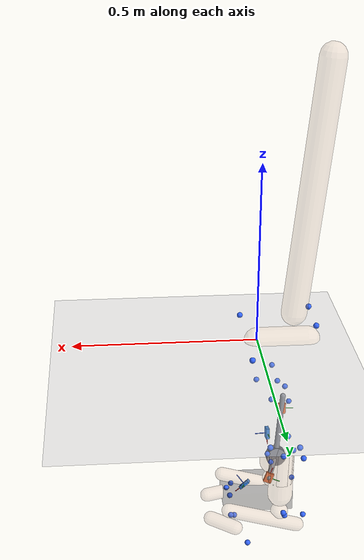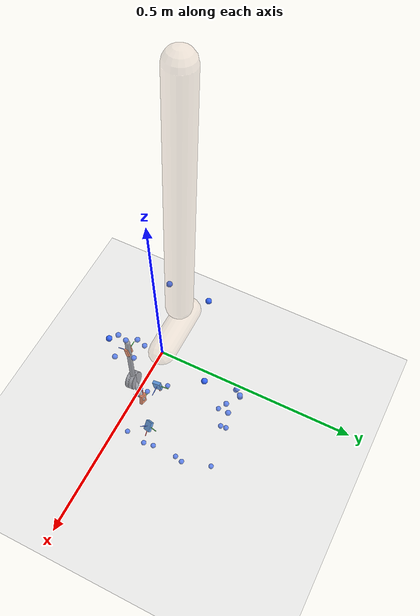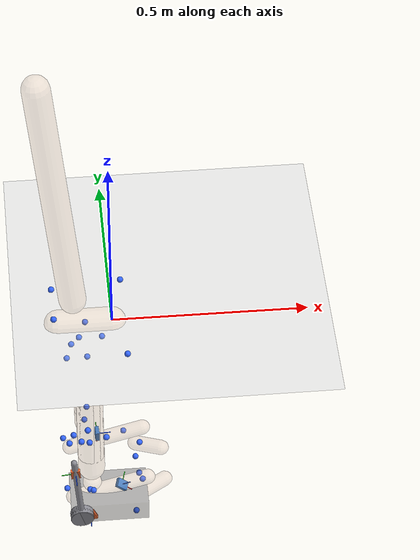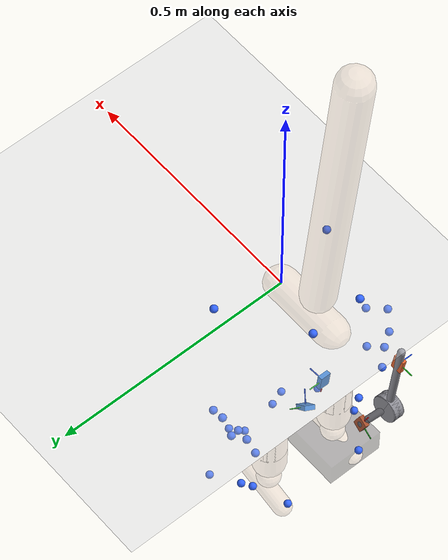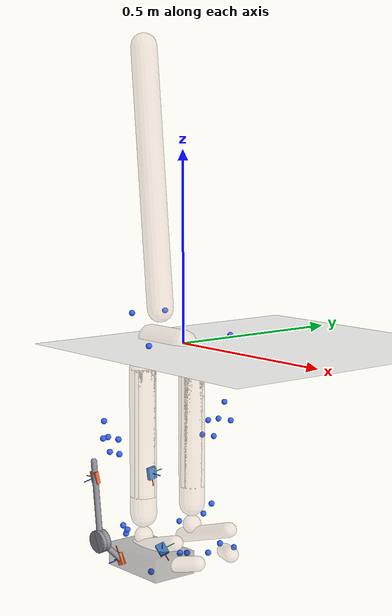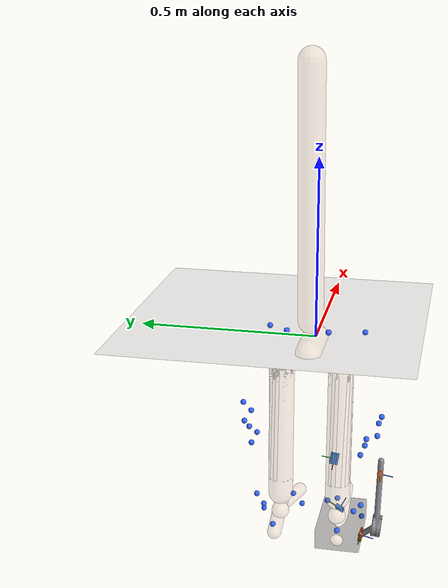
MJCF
<mujoco model="AB24">
  <compiler angle="radian" autolimits="true"/>
  <option timestep="0.005" gravity="0 0 -9.81"><flag contact="disable"/></option>
  <visual><global offwidth="1600" offheight="1200"/>
    <headlight ambient="0.55 0.55 0.55" diffuse="0.6 0.6 0.6"/></visual>
  <default><joint limited="false" damping="0"/><geom contype="0" conaffinity="0"/></default>
  <asset>
    <texture name="grid" type="2d" builtin="checker" rgb1="0.75 0.77 0.8" rgb2="0.85 0.87 0.9" width="512" height="512"/>
    <material name="grid" texture="grid" texrepeat="2 2" texuniform="true"/>
    <material name="skin" rgba="0.85 0.72 0.62 0.28"/>
  </asset>
  <worldbody>
    <light pos="0 0 4" dir="0 0 -1"/>
    <geom name="floor" type="plane" size="0 0 0.05" material="grid"/>
    <body name="pelvis" pos="0 0 0" quat="1 0 0 0">
      <joint name="pelvis_tx" type="slide" axis="1 0 0"/>
      <joint name="pelvis_ty" type="slide" axis="0 0 1"/>
      <joint name="pelvis_tz" type="slide" axis="0 -1 0"/>
      <joint name="pelvis_tilt" type="hinge" axis="0 -1 0"/>
      <joint name="pelvis_list" type="hinge" axis="1 0 0"/>
      <joint name="pelvis_rotation" type="hinge" axis="0 0 1"/>
      <inertial pos="-0.069074634 0 0" mass="11.6535" diaginertia="0.11653464 0.11653464 0.11653464"/>
      <geom type="capsule" fromto="0 0 0 -0.13814927 0 0" size="0.035" material="skin" mass="0"/>
      <site name="m_R_ASIS" pos="0.02979655 -0.13436663 0.010378045" size="0.008" rgba="0.2 0.4 1 1" group="2"/>
      <site name="m_L_ASIS" pos="0.029885228 0.13397565 0.011773508" size="0.008" rgba="0.2 0.4 1 1" group="2"/>
      <site name="m_L_PSIS" pos="-0.14942809 0.055495081 0.06618739" size="0.008" rgba="0.2 0.4 1 1" group="2"/>
      <site name="m_R_PSIS" pos="-0.14904759 -0.055161692 0.06874354" size="0.008" rgba="0.2 0.4 1 1" group="2"/>
      <body name="femur_r" pos="-0.069074634 -0.081580367 -0.064580386" quat="1 0 0 0">
        <joint name="hip_flexion_r" type="hinge" axis="0 -1 0"/>
        <joint name="hip_adduction_r" type="hinge" axis="1 0 0"/>
        <joint name="hip_rotation_r" type="hinge" axis="0 0 1"/>
        <inertial pos="0 0 -0.17074942" mass="9.20383" diaginertia="0.09203832 0.09203832 0.09203832"/>
        <geom type="capsule" fromto="0 0 0 0 0 -0.34149885" size="0.035" material="skin" mass="0"/>
        <site name="m_R_Thigh_Upper" pos="-0.010175944 -0.11612461 -0.12647962" size="0.008" rgba="0.2 0.4 1 1" group="2"/>
        <site name="m_R_Thigh_Front" pos="0.036712227 -0.10519196 -0.16798627" size="0.008" rgba="0.2 0.4 1 1" group="2"/>
        <site name="m_R_Thigh_Rear" pos="-0.027108658 -0.10754628 -0.1763228" size="0.008" rgba="0.2 0.4 1 1" group="2"/>
        <site name="m_R_Knee_Lat" pos="0.00076782742 -0.066768861 -0.40879409" size="0.008" rgba="0.2 0.4 1 1" group="2"/>
        <body name="tibia_r" pos="0 0 0" quat="1 0 0 0">
<geom name="gt_shank_axis_x" type="capsule" size="0.0012" fromto="0.01800 0.01400 -0.27930 0.01724 0.01943 -0.31387" rgba="1 0.1 0.1 1" contype="0" conaffinity="0" mass="0"/>
<geom name="gt_shank_axis_y" type="capsule" size="0.0012" fromto="0.01800 0.01400 -0.27930 0.01612 0.04852 -0.27384" rgba="0.1 0.8 0.1 1" contype="0" conaffinity="0" mass="0"/>
<geom name="gt_shank_axis_z" type="capsule" size="0.0012" fromto="0.01800 0.01400 -0.27930 0.05294 0.01598 -0.27976" rgba="0.1 0.3 1 1" contype="0" conaffinity="0" mass="0"/>
<geom name="exo_shank_axis_x" type="capsule" size="0.0012" fromto="-0.04596 -0.12117 -0.28084 -0.04756 -0.12746 -0.24644" rgba="1 0.1 0.1 1" contype="0" conaffinity="0" mass="0"/>
<geom name="exo_shank_axis_y" type="capsule" size="0.0012" fromto="-0.04596 -0.12117 -0.28084 -0.08088 -0.12249 -0.28270" rgba="0.1 0.8 0.1 1" contype="0" conaffinity="0" mass="0"/>
<geom name="exo_shank_axis_z" type="capsule" size="0.0012" fromto="-0.04596 -0.12117 -0.28084 -0.04433 -0.15558 -0.28705" rgba="0.1 0.3 1 1" contype="0" conaffinity="0" mass="0"/>
<geom name="encoder_shank" type="cylinder" size="0.03 0.012" fromto="-0.03288 -0.12772 -0.45010 -0.03452 -0.10388 -0.44790" rgba="0.55 0.55 0.58 1" contype="0" conaffinity="0" mass="0"/>
<geom name="strut_shank" type="capsule" size="0.008" fromto="-0.03370 -0.11580 -0.44900 -0.04902 -0.12251 -0.23879" rgba="0.55 0.55 0.58 1" contype="0" conaffinity="0" mass="0"/>
          <joint name="knee_r_translation1" type="slide" axis="1 0 0"/>
          <joint name="knee_r_translation2" type="slide" axis="0 0 1"/>
          <joint name="knee_angle_r" type="hinge" axis="0 -1 0"/>
          <inertial pos="0 0 -0.19494833" mass="3.66861" diaginertia="0.036686098 0.036686098 0.036686098"/>
          <geom type="capsule" fromto="0 0 0 0 0 -0.38989667" size="0.035" material="skin" mass="0"/>
          <site name="m_R_Shank_Upper" pos="-0.045482859 -0.079605005 -0.18005249" size="0.008" rgba="0.2 0.4 1 1" group="2"/>
          <site name="m_R_Shank_Front" pos="-0.0052006751 -0.07275884 -0.21918412" size="0.008" rgba="0.2 0.4 1 1" group="2"/>
          <site name="m_R_Shank_Rear" pos="-0.056779726 -0.066262877 -0.2237682" size="0.008" rgba="0.2 0.4 1 1" group="2"/>
          <site name="m_R_Ankle_Lat" pos="-0.0075492554 -0.047736947 -0.42578722" size="0.008" rgba="0.2 0.4 1 1" group="2"/>
          <site name="gt_shank_imu" type="box" size="0.016 0.012 0.005" pos="0.018 0.014 -0.2793" quat="0.69849268 0.035618581 0.71080661 0.074788098" rgba="0.16 0.47 0.84 1" group="1"/>
          <site name="exo_shank_imu" type="box" size="0.016 0.012 0.005" pos="-0.045958 -0.12117 -0.280835" quat="-0.42986484 -0.54067418 0.54443863 -0.47589309" rgba="0.92 0.41 0.20 1" group="1"/>
          <body name="talus_r" pos="0 0 -0.44899723" quat="1 0 0 0">
            <joint name="ankle_angle_r" type="hinge" axis="-0.10501355 -0.97912632 -0.17402245"/>
            <inertial pos="0 0 0" mass="0.098951" diaginertia="0.0009895104 0.0009895104 0.0009895104"/>
            <geom type="sphere" size="0.025" material="skin" mass="0"/>
            <body name="calcn_r" pos="-0.05092464 -0.0082699025 -0.043803335" quat="1 0 0 0">
<geom name="gt_foot_axis_x" type="capsule" size="0.0012" fromto="0.12930 0.00920 0.02450 0.15550 0.00996 0.00130" rgba="1 0.1 0.1 1" contype="0" conaffinity="0" mass="0"/>
<geom name="gt_foot_axis_y" type="capsule" size="0.0012" fromto="0.12930 0.00920 0.02450 0.13896 0.04066 0.03643" rgba="0.1 0.8 0.1 1" contype="0" conaffinity="0" mass="0"/>
<geom name="gt_foot_axis_z" type="capsule" size="0.0012" fromto="0.12930 0.00920 0.02450 0.15041 -0.00613 0.04783" rgba="0.1 0.3 1 1" contype="0" conaffinity="0" mass="0"/>
<geom name="exo_foot_axis_x" type="capsule" size="0.0012" fromto="0.04357 -0.06270 -0.00678 0.03096 -0.06744 0.02553" rgba="1 0.1 0.1 1" contype="0" conaffinity="0" mass="0"/>
<geom name="exo_foot_axis_y" type="capsule" size="0.0012" fromto="0.04357 -0.06270 -0.00678 0.01101 -0.05837 -0.01885" rgba="0.1 0.8 0.1 1" contype="0" conaffinity="0" mass="0"/>
<geom name="exo_foot_axis_z" type="capsule" size="0.0012" fromto="0.04357 -0.06270 -0.00678 0.04121 -0.09711 -0.01275" rgba="0.1 0.3 1 1" contype="0" conaffinity="0" mass="0"/>
<geom name="encoder_foot" type="cylinder" size="0.03 0.012" fromto="0.01711 -0.11942 0.04243 0.01749 -0.09558 0.04517" rgba="0.55 0.55 0.58 1" contype="0" conaffinity="0" mass="0"/>
<geom name="strut_foot" type="capsule" size="0.008" fromto="0.01730 -0.10750 0.04380 0.04357 -0.06270 -0.00678" rgba="0.55 0.55 0.58 1" contype="0" conaffinity="0" mass="0"/>
<geom name="shoe" type="box" pos="0.09356 -0.00043 -0.00370" size="0.10225 0.06223 0.03000" rgba="0.15 0.15 0.18 0.35" contype="0" conaffinity="0" mass="0"/>
              <joint name="subtalar_angle_r" type="hinge" axis="0.78717961 0.12094949 0.60474746"/>
              <inertial pos="0.098789862 0 0.029636959" mass="1.23689" diaginertia="0.01236888 0.01236888 0.01236888"/>
              <geom type="capsule" fromto="0 0 0 0.19757972 0 0.059273917" size="0.02" material="skin" mass="0"/>
              <site name="m_R_Heel" pos="-0.015684659 -0.00088155395 0.034654661" size="0.008" rgba="0.2 0.4 1 1" group="2"/>
              <site name="m_R_Toe_Lat" pos="0.16296418 -0.052206618 -0.013697677" size="0.008" rgba="0.2 0.4 1 1" group="2"/>
              <site name="m_R_Toe_Med" pos="0.17860874 0.052244459 0.01808688" size="0.008" rgba="0.2 0.4 1 1" group="2"/>
              <site name="m_R_Toe_Tip" pos="0.18580954 0.023376589 0.025044796" size="0.008" rgba="0.2 0.4 1 1" group="2"/>
              <site name="gt_foot_imu" type="box" size="0.016 0.012 0.005" pos="0.1293 0.0092 0.0245" quat="0.9102127 0.21388006 0.34769374 -0.069837119" rgba="0.16 0.47 0.84 1" group="1"/>
              <site name="exo_foot_imu" type="box" size="0.016 0.012 0.005" pos="0.043572 -0.062701 -0.006779" quat="-0.38504911 -0.41428336 0.64316867 -0.51617879" rgba="0.92 0.41 0.20 1" group="1"/>
              <body name="toes_r" pos="0.17663627 -0.0010669305 -0.0019757972" quat="1 0 0 0">
                <joint name="mtp_angle_r" type="hinge" axis="-0.5809544 -0.81393611 0"/>
                <inertial pos="0.034181292 0.017288226 0.0059273917" mass="0.214328" diaginertia="0.0021432795 0.0021432795 0.0021432795"/>
                <geom type="capsule" fromto="0 0 0 0.068362584 0.034576452 0.011854783" size="0.02" material="skin" mass="0"/>
              </body>
            </body>
          </body>
        </body>
      </body>
      <body name="femur_l" pos="-0.069074634 0.081580367 -0.064580386" quat="1 0 0 0">
        <joint name="hip_flexion_l" type="hinge" axis="0 -1 0"/>
        <joint name="hip_adduction_l" type="hinge" axis="-1 0 0"/>
        <joint name="hip_rotation_l" type="hinge" axis="0 0 -1"/>
        <inertial pos="0 0 -0.17074942" mass="9.20383" diaginertia="0.09203832 0.09203832 0.09203832"/>
        <geom type="capsule" fromto="0 0 0 0 0 -0.34149885" size="0.035" material="skin" mass="0"/>
        <site name="m_L_Thigh_Upper" pos="0.0068246174 0.10979618 -0.12457042" size="0.008" rgba="0.2 0.4 1 1" group="2"/>
        <site name="m_L_Thigh_Front" pos="0.04975698 0.096138014 -0.16731496" size="0.008" rgba="0.2 0.4 1 1" group="2"/>
        <site name="m_L_Thigh_Rear" pos="-0.010858434 0.10333969 -0.17333694" size="0.008" rgba="0.2 0.4 1 1" group="2"/>
        <site name="m_L_Knee_Lat" pos="0.0007314402 0.068760134 -0.40484086" size="0.008" rgba="0.2 0.4 1 1" group="2"/>
        <body name="tibia_l" pos="0 0 0" quat="1 0 0 0">
          <joint name="knee_l_translation1" type="slide" axis="1 0 0"/>
          <joint name="knee_l_translation2" type="slide" axis="0 0 1"/>
          <joint name="knee_angle_l" type="hinge" axis="0 -1 0"/>
          <inertial pos="0 0 -0.19494833" mass="3.66861" diaginertia="0.036686098 0.036686098 0.036686098"/>
          <geom type="capsule" fromto="0 0 0 0 0 -0.38989667" size="0.035" material="skin" mass="0"/>
          <site name="m_L_Shank_Upper" pos="-0.032731005 0.084769261 -0.17898674" size="0.008" rgba="0.2 0.4 1 1" group="2"/>
          <site name="m_L_Shank_Front" pos="0.0080263434 0.07066084 -0.21444658" size="0.008" rgba="0.2 0.4 1 1" group="2"/>
          <site name="m_L_Shank_Rear" pos="-0.046453205 0.075241744 -0.22064672" size="0.008" rgba="0.2 0.4 1 1" group="2"/>
          <site name="m_L_Ankle_Lat" pos="-0.0075065159 0.046632122 -0.43042986" size="0.008" rgba="0.2 0.4 1 1" group="2"/>
          <body name="talus_l" pos="0 0 -0.44899723" quat="1 0 0 0">
            <joint name="ankle_angle_l" type="hinge" axis="0.10501355 -0.97912632 0.17402245"/>
            <inertial pos="0 0 0" mass="0.098951" diaginertia="0.0009895104 0.0009895104 0.0009895104"/>
            <geom type="sphere" size="0.025" material="skin" mass="0"/>
            <body name="calcn_l" pos="-0.05092464 0.0082699025 -0.043803335" quat="1 0 0 0">
              <joint name="subtalar_angle_l" type="hinge" axis="-0.78717961 0.12094949 -0.60474746"/>
              <inertial pos="0.098789862 0 0.029636959" mass="1.23689" diaginertia="0.01236888 0.01236888 0.01236888"/>
              <geom type="capsule" fromto="0 0 0 0.19757972 0 0.059273917" size="0.02" material="skin" mass="0"/>
              <site name="m_L_Heel" pos="-0.016842603 0.0011772295 0.034253687" size="0.008" rgba="0.2 0.4 1 1" group="2"/>
              <site name="m_L_Toe_Lat" pos="0.14902031 0.058103447 -0.011782619" size="0.008" rgba="0.2 0.4 1 1" group="2"/>
              <site name="m_L_Toe_Med" pos="0.17417614 -0.0525961 0.0021185412" size="0.008" rgba="0.2 0.4 1 1" group="2"/>
              <site name="m_L_Toe_Tip" pos="0.18768303 -0.02346316 0.025059048" size="0.008" rgba="0.2 0.4 1 1" group="2"/>
              <body name="toes_l" pos="0.17663627 0.0010669305 -0.0019757972" quat="1 0 0 0">
                <joint name="mtp_angle_l" type="hinge" axis="0.5809544 -0.81393611 0"/>
                <inertial pos="0.034181292 -0.017288226 0.0059273917" mass="0.214328" diaginertia="0.0021432795 0.0021432795 0.0021432795"/>
                <geom type="capsule" fromto="0 0 0 0.068362584 -0.034576452 0.011854783" size="0.02" material="skin" mass="0"/>
              </body>
            </body>
          </body>
        </body>
      </body>
      <body name="torso" pos="-0.098384945 0 0.079626346" quat="1 0 0 0">
        <joint name="lumbar_extension" type="hinge" axis="0 -1 0"/>
        <joint name="lumbar_bending" type="hinge" axis="1 0 0"/>
        <joint name="lumbar_rotation" type="hinge" axis="0 0 1"/>
        <inertial pos="-0.032194043 0 0.34340313" mass="33.8775" diaginertia="0.33877472 0.33877472 0.33877472"/>
        <geom type="capsule" fromto="0 0 0 -0.064388086 0 0.68680625" size="0.035" material="skin" mass="0"/>
      </body>
    </body>
  </worldbody>
  <sensor>
<accelerometer name="gt_foot_imu_acc" site="gt_foot_imu"/>
<gyro name="gt_foot_imu_gyr" site="gt_foot_imu"/>
<accelerometer name="exo_foot_imu_acc" site="exo_foot_imu"/>
<gyro name="exo_foot_imu_gyr" site="exo_foot_imu"/>
<accelerometer name="gt_shank_imu_acc" site="gt_shank_imu"/>
<gyro name="gt_shank_imu_gyr" site="gt_shank_imu"/>
<accelerometer name="exo_shank_imu_acc" site="exo_shank_imu"/>
<gyro name="exo_shank_imu_gyr" site="exo_shank_imu"/>
</sensor>
</mujoco>
